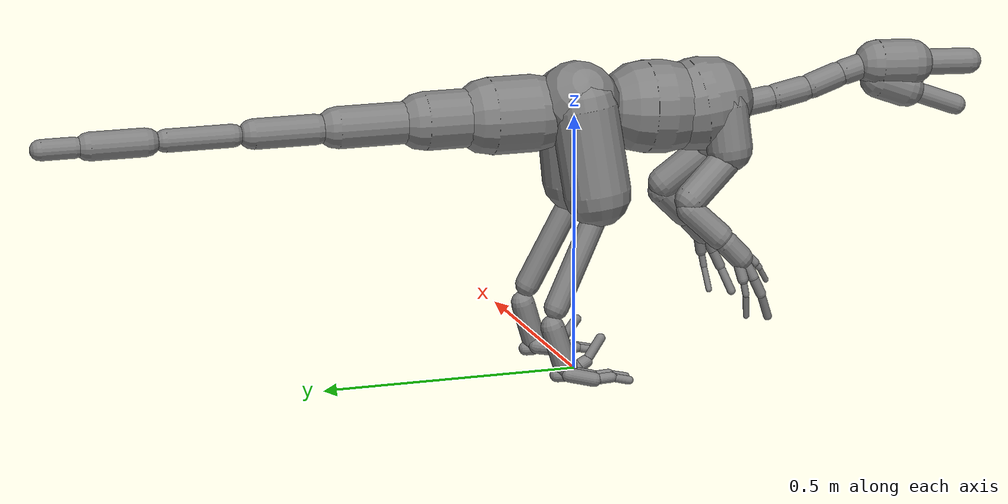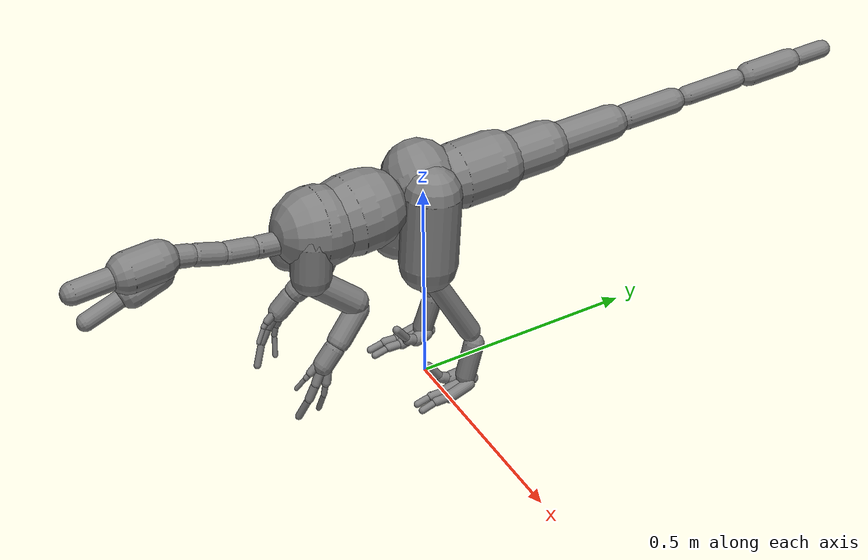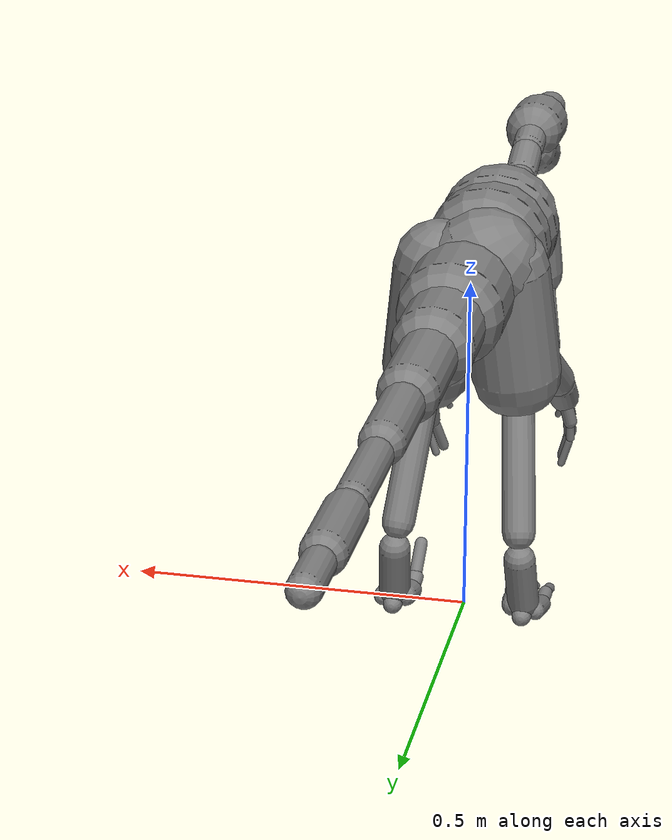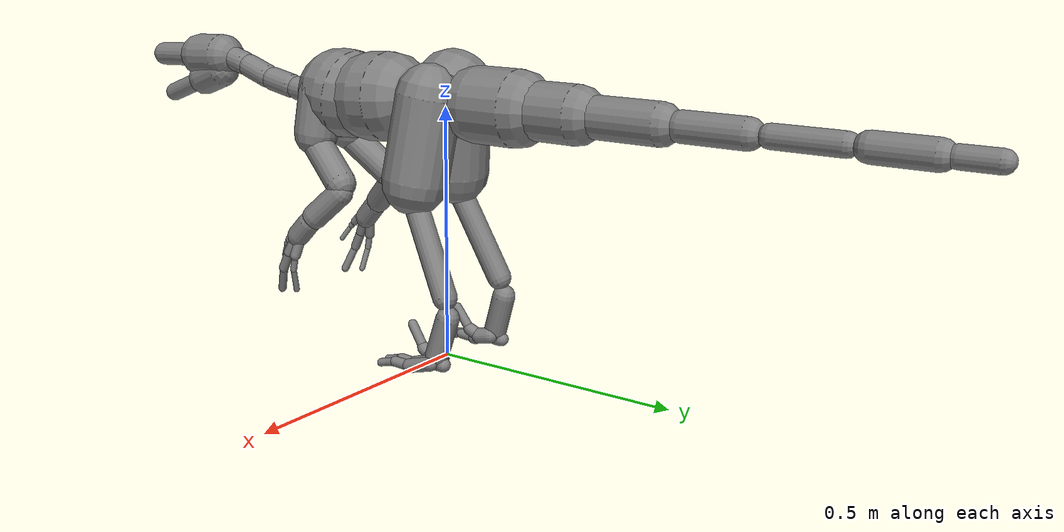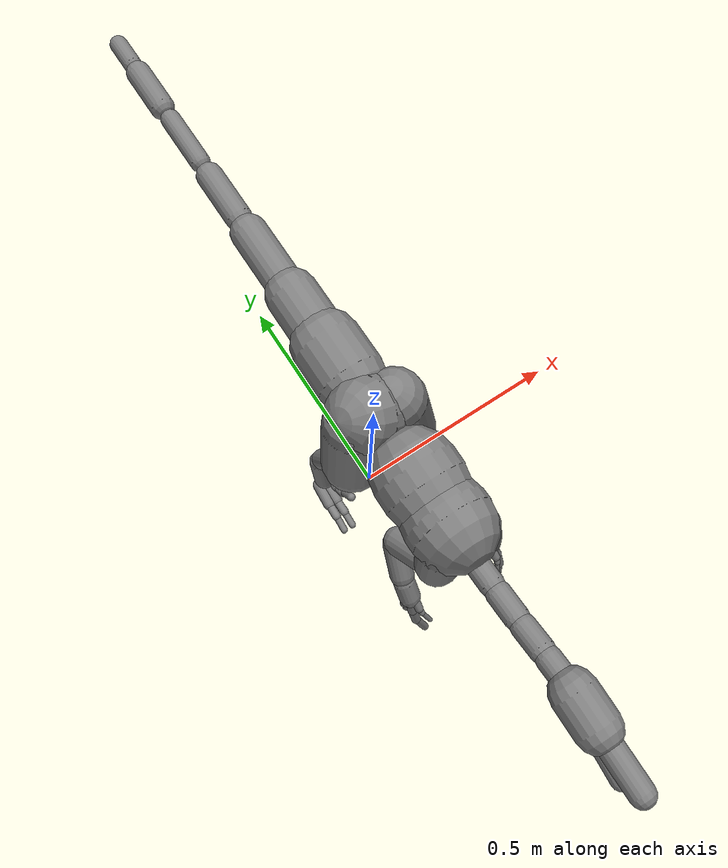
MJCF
<mujoco model="raptor">
  <compiler angle="radian" />
  <option timestep="0.016667" />
  <default>
    <joint limited="true" armature="0.02" frictionloss="0.1" />
    <geom type="capsule" density="1606.2" contype="1" conaffinity="1" friction="1.0 0.05 0.05" />
    <motor ctrllimited="true" />
  </default>
  <contact>
    <exclude body1="Neck3" body2="Jaw" />
    <exclude body1="LeftUpLeg" body2="Hips" />
    <exclude body1="LeftUpLeg" body2="Spine" />
    <exclude body1="LeftUpLeg" body2="Spine1" />
    <exclude body1="LeftUpLeg" body2="Tail" />
    <exclude body1="RightUpLeg" body2="Hips" />
    <exclude body1="RightUpLeg" body2="Spine" />
    <exclude body1="RightUpLeg" body2="Spine1" />
    <exclude body1="RightUpLeg" body2="Tail" />
    <exclude body1="LeftUpLeg" body2="RightUpLeg" />
    <exclude body1="LeftShoulder" body2="Spine" />
    <exclude body1="LeftShoulder" body2="Spine1" />
    <exclude body1="LeftShoulder" body2="Neck" />
    <exclude body1="LeftShoulder" body2="Hips" />
    <exclude body1="LeftToeBase" body2="LeftFootIndex1" />
    <exclude body1="LeftToeBase" body2="LeftFootMiddle1" />
    <exclude body1="LeftToeBase" body2="LeftFootRing1" />
    <exclude body1="LeftFootIndex1" body2="LeftFootMiddle1" />
    <exclude body1="LeftFootMiddle1" body2="LeftFootRing1" />
    <exclude body1="LeftFootIndex1" body2="LeftFootRing1" />
    <exclude body1="LeftFootIndex2" body2="LeftFootMiddle1" />
    <exclude body1="LeftFoot" body2="LeftFootIndex2" />
    <exclude body1="LeftHandMiddle2" body2="LeftHandRing2" />
    <exclude body1="LeftHandMiddle2" body2="LeftHandRing3" />
    <exclude body1="LeftHandMiddle3" body2="LeftHandRing3" />
    <exclude body1="RightShoulder" body2="Spine" />
    <exclude body1="RightShoulder" body2="Spine1" />
    <exclude body1="RightShoulder" body2="Neck" />
    <exclude body1="RightShoulder" body2="Hips" />
    <exclude body1="RightToeBase" body2="RightFootIndex1" />
    <exclude body1="RightToeBase" body2="RightFootMiddle1" />
    <exclude body1="RightToeBase" body2="RightFootRing1" />
    <exclude body1="RightFootIndex1" body2="RightFootMiddle1" />
    <exclude body1="RightFootMiddle1" body2="RightFootRing1" />
    <exclude body1="RightFootIndex1" body2="RightFootRing1" />
    <exclude body1="RightFootIndex2" body2="RightFootMiddle1" />
    <exclude body1="RightFoot" body2="RightFootIndex2" />
    <exclude body1="RightHandMiddle2" body2="RightHandRing2" />
    <exclude body1="RightHandMiddle2" body2="RightHandRing3" />
    <exclude body1="RightHandMiddle3" body2="RightHandRing3" />
    <exclude body1="LeftShoulder" body2="RightShoulder" />
  </contact>
  <worldbody>
    <body name="Hips" pos="0 0.001235 0.51128">
      <freejoint name="root" />
      <geom name="g_Hips" fromto="-0.0051561 -0.00011752 0.0044872 -0.021484 -0.00048968 0.018697" size="0.08000" density="1401.8" />
      <body name="Spine" pos="-3.9443e-33 -0.12801 -0.0030721">
        <joint name="Spine_x" type="hinge" axis="1 0 0" pos="0 0 0" range="-1.5107 0.6132" />
        <joint name="Spine_y" type="hinge" axis="0 1 0" pos="0 0 0" range="-0.6056 0.6056" />
        <joint name="Spine_z" type="hinge" axis="0 0 1" pos="0 0 0" range="-0.6850 0.6850" />
        <geom name="g_Spine" fromto="-4.8665e-10 -0.013026 -0.00061441 -2.0277e-09 -0.054274 -0.0025601" size="0.09" density="980.8" />
        <body name="Spine1" pos="-4.0554e-09 -0.10855 -0.0051201">
          <joint name="Spine1_x" type="hinge" axis="1 0 0" pos="0 0 0" range="-1.0496 0.7756" />
          <joint name="Spine1_y" type="hinge" axis="0 1 0" pos="0 0 0" range="-0.8858 0.8858" />
          <joint name="Spine1_z" type="hinge" axis="0 0 1" pos="0 0 0" range="-0.7553 0.7553" />
          <geom name="g_Spine1" fromto="-2.2009e-09 -0.0078902 0.0010698 -9.1703e-09 -0.032876 0.0044577" size="0.09" density="984.0" />
          <body name="Neck" pos="-3.4457e-09 -0.092164 -0.0071682">
            <joint name="Neck_x" type="hinge" axis="1 0 0" pos="0 0 0" range="-1.4389 0.8324" />
            <joint name="Neck_y" type="hinge" axis="0 1 0" pos="0 0 0" range="-0.6063 0.8743" />
            <joint name="Neck_z" type="hinge" axis="0 0 1" pos="0 0 0" range="-0.8974 0.8974" />
            <geom name="g_Neck" fromto="-3.3633e-10 -0.0090436 0.0013273 -2.4664e-09 -0.06632 0.0097334" size="0.025" density="980.8" />
            <body name="Neck1" pos="-2.8027e-09 -0.075363 0.011061">
              <joint name="Neck1_x" type="hinge" axis="1 0 0" pos="0 0 0" range="-1.2515 0.7095" />
              <joint name="Neck1_y" type="hinge" axis="0 1 0" pos="0 0 0" range="-0.7888 0.7888" />
              <joint name="Neck1_z" type="hinge" axis="0 0 1" pos="0 0 0" range="-0.6976 0.7484" />
              <geom name="g_Neck1" fromto="-3.2568e-10 -0.0087686 0.0017671 -2.3883e-09 -0.064303 0.012959" size="0.025" density="984.0" />
              <body name="Neck2" pos="-2.714e-09 -0.073072 0.014726">
                <joint name="Neck2_x" type="hinge" axis="1 0 0" pos="0 0 0" range="-0.9083 1.7995" />
                <joint name="Neck2_y" type="hinge" axis="0 1 0" pos="0 0 0" range="-0.6279 0.5475" />
                <joint name="Neck2_z" type="hinge" axis="0 0 1" pos="0 0 0" range="-0.9775 0.9775" />
                <geom name="g_Neck2" fromto="-3.1245e-10 -0.0084403 0.0028832 -2.2913e-09 -0.061896 0.021143" size="0.025" density="984.0" />
                <body name="Neck3" pos="-2.6037e-09 -0.070336 0.024026">
                  <joint name="Neck3_x" type="hinge" axis="1 0 0" pos="0 0 0" range="-0.7080 1.5979" />
                  <joint name="Neck3_y" type="hinge" axis="0 1 0" pos="0 0 0" range="-0.7589 1.6128" />
                  <joint name="Neck3_z" type="hinge" axis="0 0 1" pos="0 0 0" range="-0.8767 0.8654" />
                  <geom name="g_Neck3" fromto="-2.9566e-05 -0.0069161 0.0018385 -0.00021682 -0.050718 0.013483" size="0.025" density="984.0" />
                  <body name="Head" pos="-0.00024638 -0.057634 0.015321">
                    <joint name="Head_x" type="hinge" axis="1 0 0" pos="0 0 0" range="-1.6792 1.7949" />
                    <joint name="Head_y" type="hinge" axis="0 1 0" pos="0 0 0" range="-1.4589 1.4589" />
                    <joint name="Head_z" type="hinge" axis="0 0 1" pos="0 0 0" range="-1.6584 1.6584" />
                    <geom name="g_Head" fromto="-0.0001156 -0.0184456 -0.000684256 -0.0005491 -0.0876166 -0.00325022" size="0.04620" density="980.8" />
                    <geom name="g_Head_muzzle" fromto="-0.0007225 -0.115285 -0.0042766 -0.0013294 -0.212124 -0.00786894" size="0.02550" density="980.8" />
                    <body name="Jaw" pos="-0.00022066 -0.006775 -0.027347">
                      <joint name="Jaw_x" type="hinge" axis="1 0 0" pos="0 0 0" range="-0.5242 1.3148" />
                      <joint name="Jaw_y" type="hinge" axis="0 1 0" pos="0 0 0" range="-0.6722 0.6722" />
                      <joint name="Jaw_z" type="hinge" axis="0 0 1" pos="0 0 0" range="-0.6218 0.6218" />
                      <geom name="g_Jaw" fromto="-0.000129808 -0.0153616 -0.00566928 -0.000616588 -0.0729676 -0.0269291" size="0.03670" density="980.8" />
                      <geom name="g_Jaw_tip" fromto="-0.0008113 -0.09601 -0.035433 -0.00152524 -0.180499 -0.066614" size="0.01980" density="980.8" />
                    </body>
                  </body>
                </body>
              </body>
            </body>
          </body>
          <body name="LeftShoulder" pos="0.04014 -0.052546 0.016957">
            <joint name="LeftShoulder_x" type="hinge" axis="1 0 0" pos="0 0 0" range="-1.0879 1.3179" />
            <joint name="LeftShoulder_y" type="hinge" axis="0 1 0" pos="0 0 0" range="-0.9148 0.7142" />
            <joint name="LeftShoulder_z" type="hinge" axis="0 0 1" pos="0 0 0" range="-0.6609 0.5530" />
            <geom name="g_LeftShoulder" fromto="0.001229 -0.0013909 -0.013008 0.009013 -0.0102 -0.095396" size="0.04500" density="1401.8" />
            <body name="LeftArm" pos="0.010242 -0.01159 -0.1084">
              <joint name="LeftArm_x" type="hinge" axis="1 0 0" pos="0 0 0" range="-2.1802 2.3641" />
              <joint name="LeftArm_y" type="hinge" axis="0 1 0" pos="0 0 0" range="-1.3899 1.6724" />
              <joint name="LeftArm_z" type="hinge" axis="0 0 1" pos="0 0 0" range="-2.2335 1.9332" />
              <geom name="g_LeftArm" fromto="0.0032047 0.012225 -0.010312 0.023501 0.08965 -0.075621" size="0.03100" density="1401.8" />
              <body name="LeftForeArm" pos="0.026706 0.10187 -0.085933">
                <joint name="LeftForeArm_x" type="hinge" axis="1 0 0" pos="0 0 0" range="-1.2770 1.8986" />
                <joint name="LeftForeArm_y" type="hinge" axis="0 1 0" pos="0 0 0" range="-1.2931 1.1387" />
                <joint name="LeftForeArm_z" type="hinge" axis="0 0 1" pos="0 0 0" range="-2.5874 1.4681" />
                <geom name="g_LeftForeArm" fromto="0.0026862 -0.0086777 -0.0082469 0.019699 -0.063637 -0.060478" size="0.02600" density="1401.8" />
                <body name="LeftHand" pos="0.022385 -0.072314 -0.068724">
                  <joint name="LeftHand_x" type="hinge" axis="1 0 0" pos="0 0 0" range="-3.1067 2.0532" />
                  <joint name="LeftHand_y" type="hinge" axis="0 1 0" pos="0 0 0" range="-1.6520 1.3623" />
                  <joint name="LeftHand_z" type="hinge" axis="0 0 1" pos="0 0 0" range="-3.1067 2.6298" />
                  <geom name="g_LeftHand" fromto="0.00046469 -0.0045512 -0.0049138 0.0034077 -0.033375 -0.036034" size="0.02300" density="1401.8" />
                  <body name="LeftHandMiddle1" pos="0.005367 -0.039467 -0.042337">
                    <joint name="LeftHandMiddle1_x" type="hinge" axis="1 0 0" pos="0 0 0" range="-1.0460 1.4460" />
                    <joint name="LeftHandMiddle1_y" type="hinge" axis="0 1 0" pos="0 0 0" range="-1.2524 1.1571" />
                    <joint name="LeftHandMiddle1_z" type="hinge" axis="0 0 1" pos="0 0 0" range="-2.0143 1.1108" />
                    <geom name="g_LeftHandMiddle1" fromto="0 0 0 0.0046945 -0.01706 -0.03221" size="0.01071" density="1310.9" />
                    <body name="LeftHandMiddle2" pos="0.0046945 -0.01706 -0.03221">
                      <joint name="LeftHandMiddle2_x" type="hinge" axis="1 0 0" pos="0 0 0" range="-0.2083 0.6642" />
                      <joint name="LeftHandMiddle2_y" type="hinge" axis="0 1 0" pos="0 0 0" range="-0.2988 0.9734" />
                      <joint name="LeftHandMiddle2_z" type="hinge" axis="0 0 1" pos="0 0 0" range="-0.8469 0.2330" />
                      <geom name="g_LeftHandMiddle2" fromto="0 0 0 -0.00016794 -0.016683 -0.034806" size="0.00996" density="1310.9" />
                      <body name="LeftHandMiddle3" pos="-0.00016794 -0.016683 -0.034806">
                        <joint name="LeftHandMiddle3_x" type="hinge" axis="1 0 0" pos="0 0 0" range="-0.2106 1.5778" />
                        <joint name="LeftHandMiddle3_y" type="hinge" axis="0 1 0" pos="0 0 0" range="-0.4369 1.1254" />
                        <joint name="LeftHandMiddle3_z" type="hinge" axis="0 0 1" pos="0 0 0" range="-1.8404 0.2958" />
                        <geom name="g_LeftHandMiddle3" fromto="-0.00193916 -0.00294847 -0.00741284 -0.0130129 -0.0197859 -0.0497443" size="0.00821" density="1310.9" />
                      </body>
                    </body>
                  </body>
                  <body name="LeftHandRing1" pos="0.0074586 -0.0274 -0.046892">
                    <joint name="LeftHandRing1_x" type="hinge" axis="1 0 0" pos="0 0 0" range="-1.0420 0.9748" />
                    <joint name="LeftHandRing1_y" type="hinge" axis="0 1 0" pos="0 0 0" range="-0.8982 1.2482" />
                    <joint name="LeftHandRing1_z" type="hinge" axis="0 0 1" pos="0 0 0" range="-1.4353 1.0217" />
                    <geom name="g_LeftHandRing1" fromto="0 0 0 0.0066506 -0.0069127 -0.029525" size="0.01092" density="1310.9" />
                    <body name="LeftHandRing2" pos="0.0066506 -0.0069127 -0.029525">
                      <joint name="LeftHandRing2_x" type="hinge" axis="1 0 0" pos="0 0 0" range="-0.2026 0.6074" />
                      <joint name="LeftHandRing2_y" type="hinge" axis="0 1 0" pos="0 0 0" range="-0.3775 1.2035" />
                      <joint name="LeftHandRing2_z" type="hinge" axis="0 0 1" pos="0 0 0" range="-0.6580 0.2258" />
                      <geom name="g_LeftHandRing2" fromto="0 0 0 0.00042298 -0.0061192 -0.030642" size="0.00672" density="1310.9" />
                      <body name="LeftHandRing3" pos="0.00042298 -0.0061192 -0.030642">
                        <joint name="LeftHandRing3_x" type="hinge" axis="1 0 0" pos="0 0 0" range="-0.1917 2.2210" />
                        <joint name="LeftHandRing3_y" type="hinge" axis="0 1 0" pos="0 0 0" range="-0.3447 1.4237" />
                        <joint name="LeftHandRing3_z" type="hinge" axis="0 0 1" pos="0 0 0" range="-2.2882 0.2091" />
                        <geom name="g_LeftHandRing3" fromto="-0.00166988 -0.000810042 -0.00570573 -0.0134546 -0.00652669 -0.0459723" size="0.00600" density="1310.9" />
                      </body>
                    </body>
                  </body>
                  <body name="LeftHandIndex1" pos="-0.0012083 -0.046912 -0.033616">
                    <joint name="LeftHandIndex1_x" type="hinge" axis="1 0 0" pos="0 0 0" range="-1.0547 0.9737" />
                    <joint name="LeftHandIndex1_y" type="hinge" axis="0 1 0" pos="0 0 0" range="-0.5403 1.1295" />
                    <joint name="LeftHandIndex1_z" type="hinge" axis="0 0 1" pos="0 0 0" range="-1.0749 0.9371" />
                    <geom name="g_LeftHandIndex1" fromto="0 0 0 0.00054082 -0.016357 -0.01549" size="0.00906" density="1310.9" />
                    <body name="LeftHandIndex2" pos="0.00054082 -0.016357 -0.01549">
                      <joint name="LeftHandIndex2_x" type="hinge" axis="1 0 0" pos="0 0 0" range="-0.2408 0.5086" />
                      <joint name="LeftHandIndex2_y" type="hinge" axis="0 1 0" pos="0 0 0" range="-0.2930 0.4743" />
                      <joint name="LeftHandIndex2_z" type="hinge" axis="0 0 1" pos="0 0 0" range="-0.6024 0.2600" />
                      <geom name="g_LeftHandIndex2" fromto="0 0 0 -0.0013763 -0.0097047 -0.010564" size="0.00653" density="1310.9" />
                      <body name="LeftHandIndex3" pos="-0.0013763 -0.0097047 -0.010564">
                        <joint name="LeftHandIndex3_x" type="hinge" axis="1 0 0" pos="0 0 0" range="-0.2702 1.6488" />
                        <joint name="LeftHandIndex3_y" type="hinge" axis="0 1 0" pos="0 0 0" range="-0.3272 0.5907" />
                        <joint name="LeftHandIndex3_z" type="hinge" axis="0 0 1" pos="0 0 0" range="-1.9297 0.3181" />
                        <geom name="g_LeftHandIndex3" fromto="-0.00143563 -0.00273366 -0.00420885 -0.00987819 -0.0188095 -0.0289599" size="0.00522" density="1310.9" />
                      </body>
                    </body>
                  </body>
                </body>
              </body>
            </body>
          </body>
          <body name="RightShoulder" pos="-0.04014 -0.052546 0.016957">
            <joint name="RightShoulder_x" type="hinge" axis="1 0 0" pos="0 0 0" range="-1.0879 1.3179" />
            <joint name="RightShoulder_y" type="hinge" axis="0 1 0" pos="0 0 0" range="-0.7142 1.0588" />
            <joint name="RightShoulder_z" type="hinge" axis="0 0 1" pos="0 0 0" range="-0.5530 0.6609" />
            <geom name="g_RightShoulder" fromto="-0.001229 -0.0013908 -0.013008 -0.009013 -0.010199 -0.095396" size="0.04500" density="1401.8" />
            <body name="RightArm" pos="-0.010242 -0.01159 -0.1084">
              <joint name="RightArm_x" type="hinge" axis="1 0 0" pos="0 0 0" range="-2.1802 2.3641" />
              <joint name="RightArm_y" type="hinge" axis="0 1 0" pos="0 0 0" range="-1.6724 1.3899" />
              <joint name="RightArm_z" type="hinge" axis="0 0 1" pos="0 0 0" range="-1.9332 2.2335" />
              <geom name="g_RightArm" fromto="-0.0032047 0.012225 -0.010312 -0.023501 0.089649 -0.075621" size="0.03100" density="1401.8" />
              <body name="RightForeArm" pos="-0.026705 0.10187 -0.085933">
                <joint name="RightForeArm_x" type="hinge" axis="1 0 0" pos="0 0 0" range="-1.2770 1.8986" />
                <joint name="RightForeArm_y" type="hinge" axis="0 1 0" pos="0 0 0" range="-1.1387 1.2931" />
                <joint name="RightForeArm_z" type="hinge" axis="0 0 1" pos="0 0 0" range="-1.4115 2.5874" />
                <geom name="g_RightForeArm" fromto="-0.0026862 -0.0086777 -0.0082469 -0.019699 -0.063636 -0.060477" size="0.02600" density="1401.8" />
                <body name="RightHand" pos="-0.022385 -0.072314 -0.068724">
                  <joint name="RightHand_x" type="hinge" axis="1 0 0" pos="0 0 0" range="-3.1067 2.0532" />
                  <joint name="RightHand_y" type="hinge" axis="0 1 0" pos="0 0 0" range="-1.3623 1.6520" />
                  <joint name="RightHand_z" type="hinge" axis="0 0 1" pos="0 0 0" range="-2.6298 3.1067" />
                  <geom name="g_RightHand" fromto="-0.00046471 -0.0045512 -0.0049138 -0.0034078 -0.033375 -0.036035" size="0.02300" density="1401.8" />
                  <body name="RightHandMiddle1" pos="-0.005367 -0.039467 -0.042337">
                    <joint name="RightHandMiddle1_x" type="hinge" axis="1 0 0" pos="0 0 0" range="-1.0460 1.4460" />
                    <joint name="RightHandMiddle1_y" type="hinge" axis="0 1 0" pos="0 0 0" range="-1.1571 1.2524" />
                    <joint name="RightHandMiddle1_z" type="hinge" axis="0 0 1" pos="0 0 0" range="-1.1108 2.0143" />
                    <geom name="g_RightHandMiddle1" fromto="0 0 0 -0.0046947 -0.01706 -0.032209" size="0.01071" density="1310.9" />
                    <body name="RightHandMiddle2" pos="-0.0046947 -0.01706 -0.032209">
                      <joint name="RightHandMiddle2_x" type="hinge" axis="1 0 0" pos="0 0 0" range="-0.2083 0.6642" />
                      <joint name="RightHandMiddle2_y" type="hinge" axis="0 1 0" pos="0 0 0" range="-0.9734 0.2988" />
                      <joint name="RightHandMiddle2_z" type="hinge" axis="0 0 1" pos="0 0 0" range="-0.2330 0.8469" />
                      <geom name="g_RightHandMiddle2" fromto="0 0 0 0.00016794 -0.016683 -0.034806" size="0.00996" density="1310.9" />
                      <body name="RightHandMiddle3" pos="0.00016794 -0.016683 -0.034806">
                        <joint name="RightHandMiddle3_x" type="hinge" axis="1 0 0" pos="0 0 0" range="-0.2106 1.5778" />
                        <joint name="RightHandMiddle3_y" type="hinge" axis="0 1 0" pos="0 0 0" range="-1.1254 0.4369" />
                        <joint name="RightHandMiddle3_z" type="hinge" axis="0 0 1" pos="0 0 0" range="-0.2958 1.8404" />
                        <geom name="g_RightHandMiddle3" fromto="0.00193918 -0.00294852 -0.00741282 0.0130131 -0.0197864 -0.0497447" size="0.00821" density="1310.9" />
                      </body>
                    </body>
                  </body>
                  <body name="RightHandRing1" pos="-0.0074589 -0.0274 -0.046892">
                    <joint name="RightHandRing1_x" type="hinge" axis="1 0 0" pos="0 0 0" range="-1.0420 0.9748" />
                    <joint name="RightHandRing1_y" type="hinge" axis="0 1 0" pos="0 0 0" range="-1.2482 0.8982" />
                    <joint name="RightHandRing1_z" type="hinge" axis="0 0 1" pos="0 0 0" range="-1.0217 1.4353" />
                    <geom name="g_RightHandRing1" fromto="0 0 0 -0.0066498 -0.006913 -0.029525" size="0.01076" density="1310.9" />
                    <body name="RightHandRing2" pos="-0.0066498 -0.006913 -0.029525">
                      <joint name="RightHandRing2_x" type="hinge" axis="1 0 0" pos="0 0 0" range="-0.2026 0.6074" />
                      <joint name="RightHandRing2_y" type="hinge" axis="0 1 0" pos="0 0 0" range="-1.2035 0.3760" />
                      <joint name="RightHandRing2_z" type="hinge" axis="0 0 1" pos="0 0 0" range="-0.2258 0.6580" />
                      <geom name="g_RightHandRing2" fromto="0 0 0 -0.0004231 -0.0061191 -0.030642" size="0.00672" density="1310.9" />
                      <body name="RightHandRing3" pos="-0.0004231 -0.0061191 -0.030642">
                        <joint name="RightHandRing3_x" type="hinge" axis="1 0 0" pos="0 0 0" range="-0.1917 2.2210" />
                        <joint name="RightHandRing3_y" type="hinge" axis="0 1 0" pos="0 0 0" range="-1.4237 0.3447" />
                        <joint name="RightHandRing3_z" type="hinge" axis="0 0 1" pos="0 0 0" range="-0.2091 2.2882" />
                        <geom name="g_RightHandRing3" fromto="0.00166986 -0.000810038 -0.00570573 0.0134544 -0.00652662 -0.0459721" size="0.00600" density="1310.9" />
                      </body>
                    </body>
                  </body>
                  <body name="RightHandIndex1" pos="0.0012082 -0.046912 -0.033616">
                    <joint name="RightHandIndex1_x" type="hinge" axis="1 0 0" pos="0 0 0" range="-1.0547 0.9737" />
                    <joint name="RightHandIndex1_y" type="hinge" axis="0 1 0" pos="0 0 0" range="-1.1295 0.5403" />
                    <joint name="RightHandIndex1_z" type="hinge" axis="0 0 1" pos="0 0 0" range="-0.9371 1.0749" />
                    <geom name="g_RightHandIndex1" fromto="0 0 0 -0.00054081 -0.016357 -0.01549" size="0.00906" density="1310.9" />
                    <body name="RightHandIndex2" pos="-0.00054081 -0.016357 -0.01549">
                      <joint name="RightHandIndex2_x" type="hinge" axis="1 0 0" pos="0 0 0" range="-0.2408 0.5086" />
                      <joint name="RightHandIndex2_y" type="hinge" axis="0 1 0" pos="0 0 0" range="-0.4743 0.2930" />
                      <joint name="RightHandIndex2_z" type="hinge" axis="0 0 1" pos="0 0 0" range="-0.2600 0.6024" />
                      <geom name="g_RightHandIndex2" fromto="0 0 0 0.0013764 -0.0097051 -0.010563" size="0.00653" density="1310.9" />
                      <body name="RightHandIndex3" pos="0.0013764 -0.0097051 -0.010563">
                        <joint name="RightHandIndex3_x" type="hinge" axis="1 0 0" pos="0 0 0" range="-0.2702 1.6488" />
                        <joint name="RightHandIndex3_y" type="hinge" axis="0 1 0" pos="0 0 0" range="-0.5907 0.3272" />
                        <joint name="RightHandIndex3_z" type="hinge" axis="0 0 1" pos="0 0 0" range="-0.3181 1.9297" />
                        <geom name="g_RightHandIndex3" fromto="0.00143563 -0.00273363 -0.00420888 0.00987822 -0.0188095 -0.0289603" size="0.00522" density="1310.9" />
                      </body>
                    </body>
                  </body>
                </body>
              </body>
            </body>
          </body>
        </body>
      </body>
      <body name="Tail" pos="0 0.066018 -0.0008208">
        <joint name="Tail_x" type="hinge" axis="1 0 0" pos="0 0 0" range="-0.6016 1.2474" />
        <joint name="Tail_y" type="hinge" axis="0 1 0" pos="0 0 0" range="-1.1216 1.1216" />
        <joint name="Tail_z" type="hinge" axis="0 0 1" pos="0 0 0" range="-0.9570 0.9570" />
        <geom name="g_Tail" fromto="-4.5355e-10 0.014039 -5.9088e-05 -3.326e-09 0.10295 -0.00043331" size="0.07400" density="1401.8" />
        <body name="Tail1" pos="-3.7796e-09 0.11699 -0.0004924">
          <joint name="Tail1_x" type="hinge" axis="1 0 0" pos="0 0 0" range="-0.4449 0.8159" />
          <joint name="Tail1_y" type="hinge" axis="0 1 0" pos="0 0 0" range="-0.8186 0.8186" />
          <joint name="Tail1_z" type="hinge" axis="0 0 1" pos="0 0 0" range="-0.6087 0.6087" />
          <geom name="g_Tail1" fromto="-5.0601e-10 0.015662 -6.5987e-05 -3.7107e-09 0.11486 -0.00048391" size="0.05600" density="1401.8" />
          <body name="Tail2" pos="-4.2167e-09 0.13052 -0.0005499">
            <joint name="Tail2_x" type="hinge" axis="1 0 0" pos="0 0 0" range="-0.4246 0.4704" />
            <joint name="Tail2_y" type="hinge" axis="0 1 0" pos="0 0 0" range="-0.4631 0.4631" />
            <joint name="Tail2_z" type="hinge" axis="0 0 1" pos="0 0 0" range="-0.4904 0.4904" />
            <geom name="g_Tail2" fromto="-6.7061e-10 0.020757 -8.7363e-05 -4.9178e-09 0.15222 -0.00064066" size="0.04000" density="1401.8" />
            <body name="Tail3" pos="-5.5884e-09 0.17298 -0.00072802">
              <joint name="Tail3_x" type="hinge" axis="1 0 0" pos="0 0 0" range="-0.4323 0.4590" />
              <joint name="Tail3_y" type="hinge" axis="0 1 0" pos="0 0 0" range="-0.8782 0.8782" />
              <joint name="Tail3_z" type="hinge" axis="0 0 1" pos="0 0 0" range="-0.4828 0.4828" />
              <geom name="g_Tail3" fromto="-6.151e-10 0.019039 -8.0177e-05 -4.5107e-09 0.13962 -0.00058796" size="0.02900" density="1401.8" />
              <body name="Tail4" pos="-5.1258e-09 0.15866 -0.00066814">
                <joint name="Tail4_x" type="hinge" axis="1 0 0" pos="0 0 0" range="-0.4298 0.4572" />
                <joint name="Tail4_y" type="hinge" axis="0 1 0" pos="0 0 0" range="-0.8782 0.8782" />
                <joint name="Tail4_z" type="hinge" axis="0 0 1" pos="0 0 0" range="-0.4828 0.4828" />
                <geom name="g_Tail4" fromto="-6.4536e-10 0.019976 -8.4125e-05 -4.7326e-09 0.14649 -0.00061691" size="0.02200" density="1401.8" />
                <body name="Tail5" pos="-5.378e-09 0.16646 -0.00070104">
                  <joint name="Tail5_x" type="hinge" axis="1 0 0" pos="0 0 0" range="-0.2446 0.1745" />
                  <joint name="Tail5_y" type="hinge" axis="0 1 0" pos="0 0 0" range="-0.1745 0.1745" />
                  <joint name="Tail5_z" type="hinge" axis="0 0 1" pos="0 0 0" range="-0.1745 0.1745" />
                  <geom name="g_Tail5" fromto="-5.3922e-10 0.01669 -7.0269e-05 -3.9543e-09 0.1224 -0.00051531" size="0.02700" density="1401.8" />
                  <body name="Tail6" pos="-4.4935e-09 0.13909 -0.00058558">
                    <joint name="Tail6_x" type="hinge" axis="1 0 0" pos="0 0 0" range="-1.0469 1.0288" />
                    <joint name="Tail6_y" type="hinge" axis="0 1 0" pos="0 0 0" range="-1.2793 1.2793" />
                    <joint name="Tail6_z" type="hinge" axis="0 0 1" pos="0 0 0" range="-1.2112 0.8699" />
                    <geom name="g_Tail6" fromto="-3.2353e-10 0.010014 -4.2162e-05 -2.3726e-09 0.073438 -0.00030918" size="0.02000" density="1401.8" />
                  </body>
                </body>
              </body>
            </body>
          </body>
        </body>
      </body>
      <body name="LeftUpLeg" pos="0.042968 -0.00097936 0.037394">
        <joint name="LeftUpLeg_x" type="hinge" axis="1 0 0" pos="0 0 0" range="-1.7984 1.1466" />
        <joint name="LeftUpLeg_y" type="hinge" axis="0 1 0" pos="0 0 0" range="-0.9443 0.6051" />
        <joint name="LeftUpLeg_z" type="hinge" axis="0 0 1" pos="0 0 0" range="-1.0967 0.8135" />
        <geom name="g_LeftUpLeg" fromto="0.0029922 -0.0033876 -0.025627 0.021943 -0.024842 -0.18793" size="0.06500" density="1401.8" />
        <body name="LeftLeg" pos="0.024935 -0.02823 -0.21356">
          <joint name="LeftLeg_x" type="hinge" axis="1 0 0" pos="0 0 0" range="-0.7311 2.4105" />
          <joint name="LeftLeg_y" type="hinge" axis="0 1 0" pos="0 0 0" range="-0.6966 1.3946" />
          <joint name="LeftLeg_z" type="hinge" axis="0 0 1" pos="0 0 0" range="-1.4227 0.8179" />
          <geom name="g_LeftLeg" fromto="0.0027002 0.012623 -0.025199 0.019802 0.09257 -0.1848" size="0.02400" density="1401.8" />
          <body name="LeftFoot" pos="0.022502 0.10519 -0.20999">
            <joint name="LeftFoot_x" type="hinge" axis="1 0 0" pos="0 0 0" range="-2.0747 0.9271" />
            <joint name="LeftFoot_y" type="hinge" axis="0 1 0" pos="0 0 0" range="-1.6183 1.4881" />
            <joint name="LeftFoot_z" type="hinge" axis="0 0 1" pos="0 0 0" range="-1.8977 0.8570" />
            <geom name="g_LeftFoot" fromto="0.00061778 -0.0037738 -0.012291 0.0045304 -0.027674 -0.090133" size="0.02300" density="1401.8" />
            <body name="LeftToeBase" pos="0.0046043 -0.035765 -0.10618">
              <joint name="LeftToeBase_x" type="hinge" axis="1 0 0" pos="0 0 0" range="-2.7852 2.5440" />
              <joint name="LeftToeBase_y" type="hinge" axis="0 1 0" pos="0 0 0" range="-1.6339 1.7271" />
              <joint name="LeftToeBase_z" type="hinge" axis="0 0 1" pos="0 0 0" range="-1.8521 3.1067" />
              <geom name="g_LeftToeBase" fromto="0 0.0080739 0 0 0.024 0" size="0.01400" density="1401.8" />
            </body>
            <body name="LeftFootIndex1" pos="-0.010941 -0.029341 -0.097458">
              <joint name="LeftFootIndex1_x" type="hinge" axis="1 0 0" pos="0 0 0" range="-1.5186 2.6109" />
              <joint name="LeftFootIndex1_y" type="hinge" axis="0 1 0" pos="0 0 0" range="-1.2260 1.2952" />
              <joint name="LeftFootIndex1_z" type="hinge" axis="0 0 1" pos="0 0 0" range="-1.7670 2.1674" />
              <geom name="g_LeftFootIndex1" fromto="0 0 0 -0.0027936 -0.025778 -0.0045633" size="0.01673" density="1401.8" />
              <body name="LeftFootIndex2" pos="-0.0027936 -0.025778 -0.0045633">
                <joint name="LeftFootIndex2_x" type="hinge" axis="1 0 0" pos="0 0 0" range="-0.0873 1.5936" />
                <joint name="LeftFootIndex2_y" type="hinge" axis="0 1 0" pos="0 0 0" range="-0.2224 0.2088" />
                <joint name="LeftFootIndex2_z" type="hinge" axis="0 0 1" pos="0 0 0" range="-0.1410 0.2880" />
                <geom name="g_LeftFootIndex2" fromto="0 0 0 -0.0025374 -0.022209 0.011016" size="0.01264" density="1401.8" />
                <body name="LeftFootIndex3" pos="-0.0025374 -0.022209 0.011016">
                  <joint name="LeftFootIndex3_x" type="hinge" axis="1 0 0" pos="0 0 0" range="-0.8183 1.6514" />
                  <joint name="LeftFootIndex3_y" type="hinge" axis="0 1 0" pos="0 0 0" range="-0.2768 0.2332" />
                  <joint name="LeftFootIndex3_z" type="hinge" axis="0 0 1" pos="0 0 0" range="-0.2061 0.2897" />
                  <geom name="g_LeftFootIndex3" fromto="-0.00062468 -0.00548246 0.0077332 -0.0033912 -0.0297626 0.0419812" size="0.00950" density="1401.8" />
                </body>
              </body>
            </body>
            <body name="LeftFootMiddle1" pos="0.0048883 -0.030946 -0.10303">
              <joint name="LeftFootMiddle1_x" type="hinge" axis="1 0 0" pos="0 0 0" range="-1.5603 3.1067" />
              <joint name="LeftFootMiddle1_y" type="hinge" axis="0 1 0" pos="0 0 0" range="-1.4467 1.6240" />
              <joint name="LeftFootMiddle1_z" type="hinge" axis="0 0 1" pos="0 0 0" range="-2.8446 1.2173" />
              <geom name="g_LeftFootMiddle1" fromto="0 0 0 -3.4997e-09 -0.050099 -0.012979" size="0.01337" density="1401.8" />
              <body name="LeftFootMiddle2" pos="-3.4997e-09 -0.050099 -0.012979">
                <joint name="LeftFootMiddle2_x" type="hinge" axis="1 0 0" pos="0 0 0" range="-0.0873 1.6122" />
                <joint name="LeftFootMiddle2_y" type="hinge" axis="0 1 0" pos="0 0 0" range="-0.1774 0.1950" />
                <joint name="LeftFootMiddle2_z" type="hinge" axis="0 0 1" pos="0 0 0" range="-0.1691 0.2039" />
                <geom name="g_LeftFootMiddle2" fromto="0 0 0 -1.4602e-09 -0.034265 0.0018171" size="0.01003" density="1401.8" />
                <body name="LeftFootMiddle3" pos="-1.4602e-09 -0.034265 0.0018171">
                  <joint name="LeftFootMiddle3_x" type="hinge" axis="1 0 0" pos="0 0 0" range="-0.5742 1.5203" />
                  <joint name="LeftFootMiddle3_y" type="hinge" axis="0 1 0" pos="0 0 0" range="-0.1803 0.1967" />
                  <joint name="LeftFootMiddle3_z" type="hinge" axis="0 0 1" pos="0 0 0" range="-0.1841 0.2039" />
                  <geom name="g_LeftFootMiddle3" fromto="6.28112e-05 -0.00784357 -0.00181022 0.000273216 -0.034118 -0.00787409" size="0.00805" density="1401.8" />
                </body>
              </body>
            </body>
            <body name="LeftFootRing1" pos="0.022041 -0.02974 -0.10303">
              <joint name="LeftFootRing1_x" type="hinge" axis="1 0 0" pos="0 0 0" range="-1.6908 3.1067" />
              <joint name="LeftFootRing1_y" type="hinge" axis="0 1 0" pos="0 0 0" range="-1.2814 1.6088" />
              <joint name="LeftFootRing1_z" type="hinge" axis="0 0 1" pos="0 0 0" range="-2.5722 1.5796" />
              <geom name="g_LeftFootRing1" fromto="0 0 0 0.0025167 -0.050033 -0.012991" size="0.01392" density="1401.8" />
              <body name="LeftFootRing2" pos="0.0025167 -0.050033 -0.012991">
                <joint name="LeftFootRing2_x" type="hinge" axis="1 0 0" pos="0 0 0" range="-0.0873 1.5876" />
                <joint name="LeftFootRing2_y" type="hinge" axis="0 1 0" pos="0 0 0" range="-0.1809 0.2757" />
                <joint name="LeftFootRing2_z" type="hinge" axis="0 0 1" pos="0 0 0" range="-0.1904 0.2708" />
                <geom name="g_LeftFootRing2" fromto="0 0 0 0.0016202 -0.034227 0.0018081" size="0.01026" density="1401.8" />
                <body name="LeftFootRing3" pos="0.0016202 -0.034227 0.0018081">
                  <joint name="LeftFootRing3_x" type="hinge" axis="1 0 0" pos="0 0 0" range="-0.6197 1.4533" />
                  <joint name="LeftFootRing3_y" type="hinge" axis="0 1 0" pos="0 0 0" range="-0.1943 0.2410" />
                  <joint name="LeftFootRing3_z" type="hinge" axis="0 0 1" pos="0 0 0" range="-0.2271 0.1871" />
                  <geom name="g_LeftFootRing3" fromto="0.000309527 -0.00777969 -0.00196508 0.00140293 -0.0352613 -0.00890668" size="0.00803" density="1401.8" />
                </body>
              </body>
            </body>
          </body>
        </body>
      </body>
      <body name="RightUpLeg" pos="-0.042968 -0.00097935 0.037393">
        <joint name="RightUpLeg_x" type="hinge" axis="1 0 0" pos="0 0 0" range="-1.7984 1.2450" />
        <joint name="RightUpLeg_y" type="hinge" axis="0 1 0" pos="0 0 0" range="-0.6051 0.9443" />
        <joint name="RightUpLeg_z" type="hinge" axis="0 0 1" pos="0 0 0" range="-0.8135 1.0967" />
        <geom name="g_RightUpLeg" fromto="-0.0029922 -0.0033876 -0.025627 -0.021943 -0.024842 -0.18793" size="0.06500" density="1401.8" />
        <body name="RightLeg" pos="-0.024935 -0.02823 -0.21356">
          <joint name="RightLeg_x" type="hinge" axis="1 0 0" pos="0 0 0" range="-0.7311 2.4105" />
          <joint name="RightLeg_y" type="hinge" axis="0 1 0" pos="0 0 0" range="-1.3946 0.6966" />
          <joint name="RightLeg_z" type="hinge" axis="0 0 1" pos="0 0 0" range="-0.8179 1.4227" />
          <geom name="g_RightLeg" fromto="-0.0027002 0.012623 -0.025199 -0.019802 0.09257 -0.1848" size="0.02400" density="1401.8" />
          <body name="RightFoot" pos="-0.022502 0.10519 -0.20999">
            <joint name="RightFoot_x" type="hinge" axis="1 0 0" pos="0 0 0" range="-2.0747 0.9271" />
            <joint name="RightFoot_y" type="hinge" axis="0 1 0" pos="0 0 0" range="-1.4881 1.6183" />
            <joint name="RightFoot_z" type="hinge" axis="0 0 1" pos="0 0 0" range="-0.8570 1.8977" />
            <geom name="g_RightFoot" fromto="-0.00061778 -0.0037738 -0.012291 -0.0045304 -0.027674 -0.090133" size="0.02300" density="1401.8" />
            <body name="RightToeBase" pos="-0.0046043 -0.035765 -0.10618">
              <joint name="RightToeBase_x" type="hinge" axis="1 0 0" pos="0 0 0" range="-2.7852 2.5440" />
              <joint name="RightToeBase_y" type="hinge" axis="0 1 0" pos="0 0 0" range="-1.7271 1.6339" />
              <joint name="RightToeBase_z" type="hinge" axis="0 0 1" pos="0 0 0" range="-3.1067 1.8521" />
              <geom name="g_RightToeBase" fromto="0 0.0080739 0 0 0.024 0" size="0.01400" density="1401.8" />
            </body>
            <body name="RightFootIndex1" pos="0.010941 -0.029341 -0.097458">
              <joint name="RightFootIndex1_x" type="hinge" axis="1 0 0" pos="0 0 0" range="-1.5186 2.6109" />
              <joint name="RightFootIndex1_y" type="hinge" axis="0 1 0" pos="0 0 0" range="-1.2952 1.2260" />
              <joint name="RightFootIndex1_z" type="hinge" axis="0 0 1" pos="0 0 0" range="-2.1674 1.7670" />
              <geom name="g_RightFootIndex1" fromto="0 0 0 0.0027936 -0.025778 -0.0045633" size="0.01579" density="1401.8" />
              <body name="RightFootIndex2" pos="0.0027936 -0.025778 -0.0045633">
                <joint name="RightFootIndex2_x" type="hinge" axis="1 0 0" pos="0 0 0" range="-0.0873 1.5936" />
                <joint name="RightFootIndex2_y" type="hinge" axis="0 1 0" pos="0 0 0" range="-0.1698 0.2224" />
                <joint name="RightFootIndex2_z" type="hinge" axis="0 0 1" pos="0 0 0" range="-0.2880 0.1193" />
                <geom name="g_RightFootIndex2" fromto="0 0 0 0.0025375 -0.022209 0.011017" size="0.01264" density="1401.8" />
                <body name="RightFootIndex3" pos="0.0025375 -0.022209 0.011017">
                  <joint name="RightFootIndex3_x" type="hinge" axis="1 0 0" pos="0 0 0" range="-0.8183 1.6514" />
                  <joint name="RightFootIndex3_y" type="hinge" axis="0 1 0" pos="0 0 0" range="-0.2332 0.2768" />
                  <joint name="RightFootIndex3_z" type="hinge" axis="0 0 1" pos="0 0 0" range="-0.2897 0.2061" />
                  <geom name="g_RightFootIndex3" fromto="0.000624676 -0.00548246 0.0077332 0.00339118 -0.0297626 0.0419812" size="0.00950" density="1401.8" />
                </body>
              </body>
            </body>
            <body name="RightFootMiddle1" pos="-0.0048883 -0.030946 -0.10303">
              <joint name="RightFootMiddle1_x" type="hinge" axis="1 0 0" pos="0 0 0" range="-1.5603 3.1067" />
              <joint name="RightFootMiddle1_y" type="hinge" axis="0 1 0" pos="0 0 0" range="-1.6240 1.4467" />
              <joint name="RightFootMiddle1_z" type="hinge" axis="0 0 1" pos="0 0 0" range="-1.2173 2.8446" />
              <geom name="g_RightFootMiddle1" fromto="0 0 0 -1.3891e-10 -0.050099 -0.012979" size="0.01337" density="1401.8" />
              <body name="RightFootMiddle2" pos="-1.3891e-10 -0.050099 -0.012979">
                <joint name="RightFootMiddle2_x" type="hinge" axis="1 0 0" pos="0 0 0" range="-0.0873 1.6122" />
                <joint name="RightFootMiddle2_y" type="hinge" axis="0 1 0" pos="0 0 0" range="-0.1950 0.1774" />
                <joint name="RightFootMiddle2_z" type="hinge" axis="0 0 1" pos="0 0 0" range="-0.2032 0.1694" />
                <geom name="g_RightFootMiddle2" fromto="0 0 0 -1.1519e-09 -0.034265 0.0018171" size="0.01003" density="1401.8" />
                <body name="RightFootMiddle3" pos="-1.1519e-09 -0.034265 0.0018171">
                  <joint name="RightFootMiddle3_x" type="hinge" axis="1 0 0" pos="0 0 0" range="-0.5742 1.5203" />
                  <joint name="RightFootMiddle3_y" type="hinge" axis="0 1 0" pos="0 0 0" range="-0.1967 0.1803" />
                  <joint name="RightFootMiddle3_z" type="hinge" axis="0 0 1" pos="0 0 0" range="-0.2039 0.1841" />
                  <geom name="g_RightFootMiddle3" fromto="-6.28139e-05 -0.00784358 -0.00181021 -0.000273228 -0.034118 -0.00787407" size="0.00805" density="1401.8" />
                </body>
              </body>
            </body>
            <body name="RightFootRing1" pos="-0.022041 -0.02974 -0.10303">
              <joint name="RightFootRing1_x" type="hinge" axis="1 0 0" pos="0 0 0" range="-1.6908 3.1067" />
              <joint name="RightFootRing1_y" type="hinge" axis="0 1 0" pos="0 0 0" range="-1.6088 1.2814" />
              <joint name="RightFootRing1_z" type="hinge" axis="0 0 1" pos="0 0 0" range="-1.5796 2.5722" />
              <geom name="g_RightFootRing1" fromto="0 0 0 -0.002517 -0.050033 -0.012991" size="0.01399" density="1401.8" />
              <body name="RightFootRing2" pos="-0.002517 -0.050033 -0.012991">
                <joint name="RightFootRing2_x" type="hinge" axis="1 0 0" pos="0 0 0" range="-0.0873 1.6407" />
                <joint name="RightFootRing2_y" type="hinge" axis="0 1 0" pos="0 0 0" range="-0.3756 0.1783" />
                <joint name="RightFootRing2_z" type="hinge" axis="0 0 1" pos="0 0 0" range="-0.2708 0.2143" />
                <geom name="g_RightFootRing2" fromto="0 0 0 -0.00162 -0.034227 0.0018081" size="0.01026" density="1401.8" />
                <body name="RightFootRing3" pos="-0.00162 -0.034227 0.0018081">
                  <joint name="RightFootRing3_x" type="hinge" axis="1 0 0" pos="0 0 0" range="-0.6197 1.4533" />
                  <joint name="RightFootRing3_y" type="hinge" axis="0 1 0" pos="0 0 0" range="-0.3649 0.1936" />
                  <joint name="RightFootRing3_z" type="hinge" axis="0 0 1" pos="0 0 0" range="-0.1871 0.2111" />
                  <geom name="g_RightFootRing3" fromto="-0.000311448 -0.00782813 -0.00197731 -0.00140097 -0.035213 -0.00889445" size="0.00808" density="1401.8" />
                </body>
              </body>
            </body>
          </body>
        </body>
      </body>
    </body>
  </worldbody>
  <actuator>
    <motor name="m_Spine_x" joint="Spine_x" ctrlrange="-20 20" />
    <motor name="m_Spine_y" joint="Spine_y" ctrlrange="-20 20" />
    <motor name="m_Spine_z" joint="Spine_z" ctrlrange="-20 20" />
    <motor name="m_Tail_x" joint="Tail_x" ctrlrange="-20 20" />
    <motor name="m_Tail_y" joint="Tail_y" ctrlrange="-20 20" />
    <motor name="m_Tail_z" joint="Tail_z" ctrlrange="-20 20" />
    <motor name="m_LeftUpLeg_x" joint="LeftUpLeg_x" ctrlrange="-20 20" />
    <motor name="m_LeftUpLeg_y" joint="LeftUpLeg_y" ctrlrange="-20 20" />
    <motor name="m_LeftUpLeg_z" joint="LeftUpLeg_z" ctrlrange="-20 20" />
    <motor name="m_RightUpLeg_x" joint="RightUpLeg_x" ctrlrange="-20 20" />
    <motor name="m_RightUpLeg_y" joint="RightUpLeg_y" ctrlrange="-20 20" />
    <motor name="m_RightUpLeg_z" joint="RightUpLeg_z" ctrlrange="-20 20" />
    <motor name="m_Spine1_x" joint="Spine1_x" ctrlrange="-20 20" />
    <motor name="m_Spine1_y" joint="Spine1_y" ctrlrange="-20 20" />
    <motor name="m_Spine1_z" joint="Spine1_z" ctrlrange="-20 20" />
    <motor name="m_Tail1_x" joint="Tail1_x" ctrlrange="-20 20" />
    <motor name="m_Tail1_y" joint="Tail1_y" ctrlrange="-20 20" />
    <motor name="m_Tail1_z" joint="Tail1_z" ctrlrange="-20 20" />
    <motor name="m_LeftLeg_x" joint="LeftLeg_x" ctrlrange="-20 20" />
    <motor name="m_LeftLeg_y" joint="LeftLeg_y" ctrlrange="-20 20" />
    <motor name="m_LeftLeg_z" joint="LeftLeg_z" ctrlrange="-20 20" />
    <motor name="m_RightLeg_x" joint="RightLeg_x" ctrlrange="-20 20" />
    <motor name="m_RightLeg_y" joint="RightLeg_y" ctrlrange="-20 20" />
    <motor name="m_RightLeg_z" joint="RightLeg_z" ctrlrange="-20 20" />
    <motor name="m_Neck_x" joint="Neck_x" ctrlrange="-20 20" />
    <motor name="m_Neck_y" joint="Neck_y" ctrlrange="-20 20" />
    <motor name="m_Neck_z" joint="Neck_z" ctrlrange="-20 20" />
    <motor name="m_LeftShoulder_x" joint="LeftShoulder_x" ctrlrange="-20 20" />
    <motor name="m_LeftShoulder_y" joint="LeftShoulder_y" ctrlrange="-20 20" />
    <motor name="m_LeftShoulder_z" joint="LeftShoulder_z" ctrlrange="-20 20" />
    <motor name="m_RightShoulder_x" joint="RightShoulder_x" ctrlrange="-20 20" />
    <motor name="m_RightShoulder_y" joint="RightShoulder_y" ctrlrange="-20 20" />
    <motor name="m_RightShoulder_z" joint="RightShoulder_z" ctrlrange="-20 20" />
    <motor name="m_Tail2_x" joint="Tail2_x" ctrlrange="-20 20" />
    <motor name="m_Tail2_y" joint="Tail2_y" ctrlrange="-20 20" />
    <motor name="m_Tail2_z" joint="Tail2_z" ctrlrange="-20 20" />
    <motor name="m_LeftFoot_x" joint="LeftFoot_x" ctrlrange="-20 20" />
    <motor name="m_LeftFoot_y" joint="LeftFoot_y" ctrlrange="-20 20" />
    <motor name="m_LeftFoot_z" joint="LeftFoot_z" ctrlrange="-20 20" />
    <motor name="m_RightFoot_x" joint="RightFoot_x" ctrlrange="-20 20" />
    <motor name="m_RightFoot_y" joint="RightFoot_y" ctrlrange="-20 20" />
    <motor name="m_RightFoot_z" joint="RightFoot_z" ctrlrange="-20 20" />
    <motor name="m_Neck1_x" joint="Neck1_x" ctrlrange="-20 20" />
    <motor name="m_Neck1_y" joint="Neck1_y" ctrlrange="-20 20" />
    <motor name="m_Neck1_z" joint="Neck1_z" ctrlrange="-20 20" />
    <motor name="m_LeftArm_x" joint="LeftArm_x" ctrlrange="-20 20" />
    <motor name="m_LeftArm_y" joint="LeftArm_y" ctrlrange="-20 20" />
    <motor name="m_LeftArm_z" joint="LeftArm_z" ctrlrange="-20 20" />
    <motor name="m_RightArm_x" joint="RightArm_x" ctrlrange="-20 20" />
    <motor name="m_RightArm_y" joint="RightArm_y" ctrlrange="-20 20" />
    <motor name="m_RightArm_z" joint="RightArm_z" ctrlrange="-20 20" />
    <motor name="m_Tail3_x" joint="Tail3_x" ctrlrange="-20 20" />
    <motor name="m_Tail3_y" joint="Tail3_y" ctrlrange="-20 20" />
    <motor name="m_Tail3_z" joint="Tail3_z" ctrlrange="-20 20" />
    <motor name="m_LeftToeBase_x" joint="LeftToeBase_x" ctrlrange="-20 20" />
    <motor name="m_LeftToeBase_y" joint="LeftToeBase_y" ctrlrange="-20 20" />
    <motor name="m_LeftToeBase_z" joint="LeftToeBase_z" ctrlrange="-20 20" />
    <motor name="m_LeftFootIndex1_x" joint="LeftFootIndex1_x" ctrlrange="-20 20" />
    <motor name="m_LeftFootIndex1_y" joint="LeftFootIndex1_y" ctrlrange="-20 20" />
    <motor name="m_LeftFootIndex1_z" joint="LeftFootIndex1_z" ctrlrange="-20 20" />
    <motor name="m_LeftFootMiddle1_x" joint="LeftFootMiddle1_x" ctrlrange="-20 20" />
    <motor name="m_LeftFootMiddle1_y" joint="LeftFootMiddle1_y" ctrlrange="-20 20" />
    <motor name="m_LeftFootMiddle1_z" joint="LeftFootMiddle1_z" ctrlrange="-20 20" />
    <motor name="m_LeftFootRing1_x" joint="LeftFootRing1_x" ctrlrange="-20 20" />
    <motor name="m_LeftFootRing1_y" joint="LeftFootRing1_y" ctrlrange="-20 20" />
    <motor name="m_LeftFootRing1_z" joint="LeftFootRing1_z" ctrlrange="-20 20" />
    <motor name="m_RightToeBase_x" joint="RightToeBase_x" ctrlrange="-20 20" />
    <motor name="m_RightToeBase_y" joint="RightToeBase_y" ctrlrange="-20 20" />
    <motor name="m_RightToeBase_z" joint="RightToeBase_z" ctrlrange="-20 20" />
    <motor name="m_RightFootIndex1_x" joint="RightFootIndex1_x" ctrlrange="-20 20" />
    <motor name="m_RightFootIndex1_y" joint="RightFootIndex1_y" ctrlrange="-20 20" />
    <motor name="m_RightFootIndex1_z" joint="RightFootIndex1_z" ctrlrange="-20 20" />
    <motor name="m_RightFootMiddle1_x" joint="RightFootMiddle1_x" ctrlrange="-20 20" />
    <motor name="m_RightFootMiddle1_y" joint="RightFootMiddle1_y" ctrlrange="-20 20" />
    <motor name="m_RightFootMiddle1_z" joint="RightFootMiddle1_z" ctrlrange="-20 20" />
    <motor name="m_RightFootRing1_x" joint="RightFootRing1_x" ctrlrange="-20 20" />
    <motor name="m_RightFootRing1_y" joint="RightFootRing1_y" ctrlrange="-20 20" />
    <motor name="m_RightFootRing1_z" joint="RightFootRing1_z" ctrlrange="-20 20" />
    <motor name="m_Neck2_x" joint="Neck2_x" ctrlrange="-20 20" />
    <motor name="m_Neck2_y" joint="Neck2_y" ctrlrange="-20 20" />
    <motor name="m_Neck2_z" joint="Neck2_z" ctrlrange="-20 20" />
    <motor name="m_LeftForeArm_x" joint="LeftForeArm_x" ctrlrange="-20 20" />
    <motor name="m_LeftForeArm_y" joint="LeftForeArm_y" ctrlrange="-20 20" />
    <motor name="m_LeftForeArm_z" joint="LeftForeArm_z" ctrlrange="-20 20" />
    <motor name="m_RightForeArm_x" joint="RightForeArm_x" ctrlrange="-20 20" />
    <motor name="m_RightForeArm_y" joint="RightForeArm_y" ctrlrange="-20 20" />
    <motor name="m_RightForeArm_z" joint="RightForeArm_z" ctrlrange="-20 20" />
    <motor name="m_Tail4_x" joint="Tail4_x" ctrlrange="-20 20" />
    <motor name="m_Tail4_y" joint="Tail4_y" ctrlrange="-20 20" />
    <motor name="m_Tail4_z" joint="Tail4_z" ctrlrange="-20 20" />
    <motor name="m_LeftFootIndex2_x" joint="LeftFootIndex2_x" ctrlrange="-20 20" />
    <motor name="m_LeftFootIndex2_y" joint="LeftFootIndex2_y" ctrlrange="-20 20" />
    <motor name="m_LeftFootIndex2_z" joint="LeftFootIndex2_z" ctrlrange="-20 20" />
    <motor name="m_LeftFootMiddle2_x" joint="LeftFootMiddle2_x" ctrlrange="-20 20" />
    <motor name="m_LeftFootMiddle2_y" joint="LeftFootMiddle2_y" ctrlrange="-20 20" />
    <motor name="m_LeftFootMiddle2_z" joint="LeftFootMiddle2_z" ctrlrange="-20 20" />
    <motor name="m_LeftFootRing2_x" joint="LeftFootRing2_x" ctrlrange="-20 20" />
    <motor name="m_LeftFootRing2_y" joint="LeftFootRing2_y" ctrlrange="-20 20" />
    <motor name="m_LeftFootRing2_z" joint="LeftFootRing2_z" ctrlrange="-20 20" />
    <motor name="m_RightFootIndex2_x" joint="RightFootIndex2_x" ctrlrange="-20 20" />
    <motor name="m_RightFootIndex2_y" joint="RightFootIndex2_y" ctrlrange="-20 20" />
    <motor name="m_RightFootIndex2_z" joint="RightFootIndex2_z" ctrlrange="-20 20" />
    <motor name="m_RightFootMiddle2_x" joint="RightFootMiddle2_x" ctrlrange="-20 20" />
    <motor name="m_RightFootMiddle2_y" joint="RightFootMiddle2_y" ctrlrange="-20 20" />
    <motor name="m_RightFootMiddle2_z" joint="RightFootMiddle2_z" ctrlrange="-20 20" />
    <motor name="m_RightFootRing2_x" joint="RightFootRing2_x" ctrlrange="-20 20" />
    <motor name="m_RightFootRing2_y" joint="RightFootRing2_y" ctrlrange="-20 20" />
    <motor name="m_RightFootRing2_z" joint="RightFootRing2_z" ctrlrange="-20 20" />
    <motor name="m_Neck3_x" joint="Neck3_x" ctrlrange="-20 20" />
    <motor name="m_Neck3_y" joint="Neck3_y" ctrlrange="-20 20" />
    <motor name="m_Neck3_z" joint="Neck3_z" ctrlrange="-20 20" />
    <motor name="m_LeftHand_x" joint="LeftHand_x" ctrlrange="-20 20" />
    <motor name="m_LeftHand_y" joint="LeftHand_y" ctrlrange="-20 20" />
    <motor name="m_LeftHand_z" joint="LeftHand_z" ctrlrange="-20 20" />
    <motor name="m_RightHand_x" joint="RightHand_x" ctrlrange="-20 20" />
    <motor name="m_RightHand_y" joint="RightHand_y" ctrlrange="-20 20" />
    <motor name="m_RightHand_z" joint="RightHand_z" ctrlrange="-20 20" />
    <motor name="m_Tail5_x" joint="Tail5_x" ctrlrange="-20 20" />
    <motor name="m_Tail5_y" joint="Tail5_y" ctrlrange="-20 20" />
    <motor name="m_Tail5_z" joint="Tail5_z" ctrlrange="-20 20" />
    <motor name="m_LeftFootIndex3_x" joint="LeftFootIndex3_x" ctrlrange="-20 20" />
    <motor name="m_LeftFootIndex3_y" joint="LeftFootIndex3_y" ctrlrange="-20 20" />
    <motor name="m_LeftFootIndex3_z" joint="LeftFootIndex3_z" ctrlrange="-20 20" />
    <motor name="m_LeftFootMiddle3_x" joint="LeftFootMiddle3_x" ctrlrange="-20 20" />
    <motor name="m_LeftFootMiddle3_y" joint="LeftFootMiddle3_y" ctrlrange="-20 20" />
    <motor name="m_LeftFootMiddle3_z" joint="LeftFootMiddle3_z" ctrlrange="-20 20" />
    <motor name="m_LeftFootRing3_x" joint="LeftFootRing3_x" ctrlrange="-20 20" />
    <motor name="m_LeftFootRing3_y" joint="LeftFootRing3_y" ctrlrange="-20 20" />
    <motor name="m_LeftFootRing3_z" joint="LeftFootRing3_z" ctrlrange="-20 20" />
    <motor name="m_RightFootIndex3_x" joint="RightFootIndex3_x" ctrlrange="-20 20" />
    <motor name="m_RightFootIndex3_y" joint="RightFootIndex3_y" ctrlrange="-20 20" />
    <motor name="m_RightFootIndex3_z" joint="RightFootIndex3_z" ctrlrange="-20 20" />
    <motor name="m_RightFootMiddle3_x" joint="RightFootMiddle3_x" ctrlrange="-20 20" />
    <motor name="m_RightFootMiddle3_y" joint="RightFootMiddle3_y" ctrlrange="-20 20" />
    <motor name="m_RightFootMiddle3_z" joint="RightFootMiddle3_z" ctrlrange="-20 20" />
    <motor name="m_RightFootRing3_x" joint="RightFootRing3_x" ctrlrange="-20 20" />
    <motor name="m_RightFootRing3_y" joint="RightFootRing3_y" ctrlrange="-20 20" />
    <motor name="m_RightFootRing3_z" joint="RightFootRing3_z" ctrlrange="-20 20" />
    <motor name="m_Head_x" joint="Head_x" ctrlrange="-20 20" />
    <motor name="m_Head_y" joint="Head_y" ctrlrange="-20 20" />
    <motor name="m_Head_z" joint="Head_z" ctrlrange="-20 20" />
    <motor name="m_LeftHandMiddle1_x" joint="LeftHandMiddle1_x" ctrlrange="-20 20" />
    <motor name="m_LeftHandMiddle1_y" joint="LeftHandMiddle1_y" ctrlrange="-20 20" />
    <motor name="m_LeftHandMiddle1_z" joint="LeftHandMiddle1_z" ctrlrange="-20 20" />
    <motor name="m_LeftHandRing1_x" joint="LeftHandRing1_x" ctrlrange="-20 20" />
    <motor name="m_LeftHandRing1_y" joint="LeftHandRing1_y" ctrlrange="-20 20" />
    <motor name="m_LeftHandRing1_z" joint="LeftHandRing1_z" ctrlrange="-20 20" />
    <motor name="m_LeftHandIndex1_x" joint="LeftHandIndex1_x" ctrlrange="-20 20" />
    <motor name="m_LeftHandIndex1_y" joint="LeftHandIndex1_y" ctrlrange="-20 20" />
    <motor name="m_LeftHandIndex1_z" joint="LeftHandIndex1_z" ctrlrange="-20 20" />
    <motor name="m_RightHandMiddle1_x" joint="RightHandMiddle1_x" ctrlrange="-20 20" />
    <motor name="m_RightHandMiddle1_y" joint="RightHandMiddle1_y" ctrlrange="-20 20" />
    <motor name="m_RightHandMiddle1_z" joint="RightHandMiddle1_z" ctrlrange="-20 20" />
    <motor name="m_RightHandRing1_x" joint="RightHandRing1_x" ctrlrange="-20 20" />
    <motor name="m_RightHandRing1_y" joint="RightHandRing1_y" ctrlrange="-20 20" />
    <motor name="m_RightHandRing1_z" joint="RightHandRing1_z" ctrlrange="-20 20" />
    <motor name="m_RightHandIndex1_x" joint="RightHandIndex1_x" ctrlrange="-20 20" />
    <motor name="m_RightHandIndex1_y" joint="RightHandIndex1_y" ctrlrange="-20 20" />
    <motor name="m_RightHandIndex1_z" joint="RightHandIndex1_z" ctrlrange="-20 20" />
    <motor name="m_Tail6_x" joint="Tail6_x" ctrlrange="-20 20" />
    <motor name="m_Tail6_y" joint="Tail6_y" ctrlrange="-20 20" />
    <motor name="m_Tail6_z" joint="Tail6_z" ctrlrange="-20 20" />
    <motor name="m_Jaw_x" joint="Jaw_x" ctrlrange="-20 20" />
    <motor name="m_Jaw_y" joint="Jaw_y" ctrlrange="-20 20" />
    <motor name="m_Jaw_z" joint="Jaw_z" ctrlrange="-20 20" />
    <motor name="m_LeftHandMiddle2_x" joint="LeftHandMiddle2_x" ctrlrange="-20 20" />
    <motor name="m_LeftHandMiddle2_y" joint="LeftHandMiddle2_y" ctrlrange="-20 20" />
    <motor name="m_LeftHandMiddle2_z" joint="LeftHandMiddle2_z" ctrlrange="-20 20" />
    <motor name="m_LeftHandRing2_x" joint="LeftHandRing2_x" ctrlrange="-20 20" />
    <motor name="m_LeftHandRing2_y" joint="LeftHandRing2_y" ctrlrange="-20 20" />
    <motor name="m_LeftHandRing2_z" joint="LeftHandRing2_z" ctrlrange="-20 20" />
    <motor name="m_LeftHandIndex2_x" joint="LeftHandIndex2_x" ctrlrange="-20 20" />
    <motor name="m_LeftHandIndex2_y" joint="LeftHandIndex2_y" ctrlrange="-20 20" />
    <motor name="m_LeftHandIndex2_z" joint="LeftHandIndex2_z" ctrlrange="-20 20" />
    <motor name="m_RightHandMiddle2_x" joint="RightHandMiddle2_x" ctrlrange="-20 20" />
    <motor name="m_RightHandMiddle2_y" joint="RightHandMiddle2_y" ctrlrange="-20 20" />
    <motor name="m_RightHandMiddle2_z" joint="RightHandMiddle2_z" ctrlrange="-20 20" />
    <motor name="m_RightHandRing2_x" joint="RightHandRing2_x" ctrlrange="-20 20" />
    <motor name="m_RightHandRing2_y" joint="RightHandRing2_y" ctrlrange="-20 20" />
    <motor name="m_RightHandRing2_z" joint="RightHandRing2_z" ctrlrange="-20 20" />
    <motor name="m_RightHandIndex2_x" joint="RightHandIndex2_x" ctrlrange="-20 20" />
    <motor name="m_RightHandIndex2_y" joint="RightHandIndex2_y" ctrlrange="-20 20" />
    <motor name="m_RightHandIndex2_z" joint="RightHandIndex2_z" ctrlrange="-20 20" />
    <motor name="m_LeftHandMiddle3_x" joint="LeftHandMiddle3_x" ctrlrange="-20 20" />
    <motor name="m_LeftHandMiddle3_y" joint="LeftHandMiddle3_y" ctrlrange="-20 20" />
    <motor name="m_LeftHandMiddle3_z" joint="LeftHandMiddle3_z" ctrlrange="-20 20" />
    <motor name="m_LeftHandRing3_x" joint="LeftHandRing3_x" ctrlrange="-20 20" />
    <motor name="m_LeftHandRing3_y" joint="LeftHandRing3_y" ctrlrange="-20 20" />
    <motor name="m_LeftHandRing3_z" joint="LeftHandRing3_z" ctrlrange="-20 20" />
    <motor name="m_LeftHandIndex3_x" joint="LeftHandIndex3_x" ctrlrange="-20 20" />
    <motor name="m_LeftHandIndex3_y" joint="LeftHandIndex3_y" ctrlrange="-20 20" />
    <motor name="m_LeftHandIndex3_z" joint="LeftHandIndex3_z" ctrlrange="-20 20" />
    <motor name="m_RightHandMiddle3_x" joint="RightHandMiddle3_x" ctrlrange="-20 20" />
    <motor name="m_RightHandMiddle3_y" joint="RightHandMiddle3_y" ctrlrange="-20 20" />
    <motor name="m_RightHandMiddle3_z" joint="RightHandMiddle3_z" ctrlrange="-20 20" />
    <motor name="m_RightHandRing3_x" joint="RightHandRing3_x" ctrlrange="-20 20" />
    <motor name="m_RightHandRing3_y" joint="RightHandRing3_y" ctrlrange="-20 20" />
    <motor name="m_RightHandRing3_z" joint="RightHandRing3_z" ctrlrange="-20 20" />
    <motor name="m_RightHandIndex3_x" joint="RightHandIndex3_x" ctrlrange="-20 20" />
    <motor name="m_RightHandIndex3_y" joint="RightHandIndex3_y" ctrlrange="-20 20" />
    <motor name="m_RightHandIndex3_z" joint="RightHandIndex3_z" ctrlrange="-20 20" />
  </actuator>
</mujoco>
